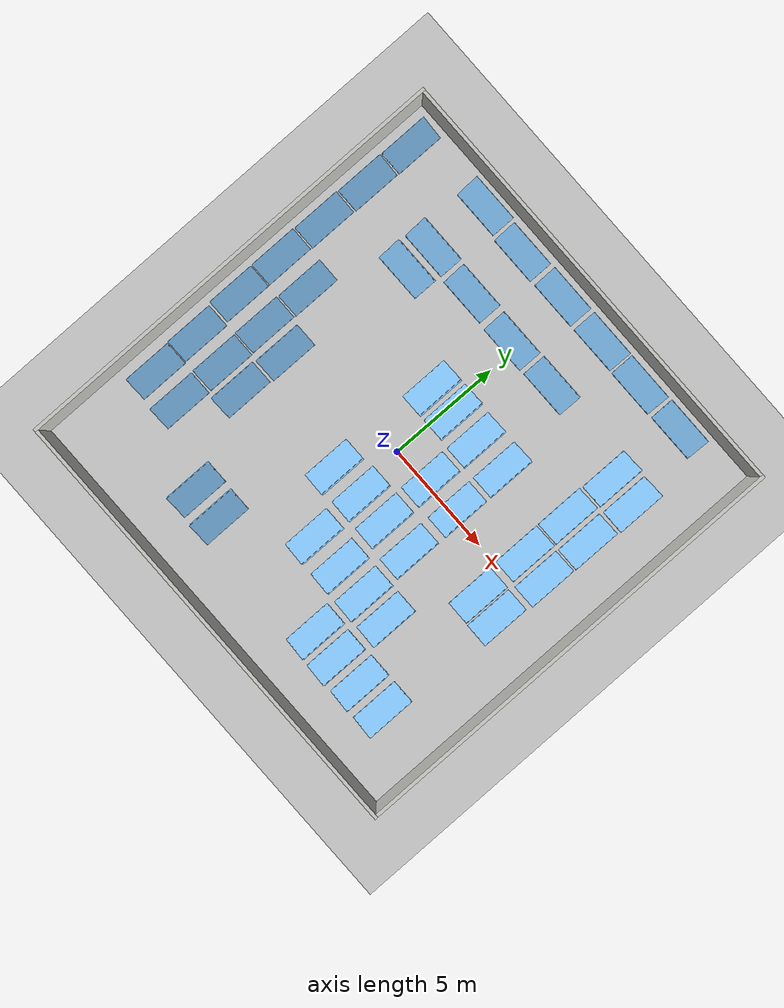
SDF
<sdf version="1.7">
 <world name="default">
  <light name="sun" type="directional">
   <pose>0 0 10 0 -0 0</pose>
   <diffuse>0.8 0.8 0.8 1</diffuse>
   <specular>0.2 0.2 0.2 1</specular>
   <attenuation>
    <range>1000</range>
    <constant>0.9</constant>
    <linear>0.01</linear>
    <quadratic>0.001</quadratic>
   </attenuation>
   <direction>-0.5 0.1 -0.9</direction>
   <spot><inner_angle>0</inner_angle><outer_angle>0</outer_angle><falloff>0</falloff></spot>
  </light>
  <model name="ground_plane">
   <static>1</static>
   <link name="link">
    <collision name="collision">
     <geometry><plane><normal>0 0 1</normal><size>100 100</size></plane></geometry>
     <surface><friction><ode><mu>100</mu><mu2>50</mu2></ode></friction></surface>
    </collision>
    <visual name="visual">
     <cast_shadows>0</cast_shadows>
     <geometry><plane><normal>0 0 1</normal><size>100 100</size></plane></geometry>
     <material>
      <script><uri>file://media/materials/scripts/gazebo.material</uri><name>Gazebo/Grey</name></script>
     </material>
    </visual>
   </link>
  </model>
  <gravity>0 0 -9.8</gravity>
  <magnetic_field>6e-06 2.3e-05 -4.2e-05</magnetic_field>
  <atmosphere type="adiabatic"/>
  <physics type="ode">
   <max_step_size>0.001</max_step_size>
   <real_time_factor>1</real_time_factor>
   <real_time_update_rate>1000</real_time_update_rate>
  </physics>
  <scene><ambient>0.4 0.4 0.4 1</ambient><background>0.7 0.7 0.7 1</background><shadows>1</shadows></scene>
  <spherical_coordinates>
   <surface_model>EARTH_WGS84</surface_model>
   <latitude_deg>0</latitude_deg>
   <longitude_deg>0</longitude_deg>
   <elevation>0</elevation>
   <heading_deg>0</heading_deg>
  </spherical_coordinates>
  <model name="photovoltaic">
   <static>1</static>
   <link name="link">
    <collision name="collision">
     <pose>0 0 0 1.5708 -0 0</pose>
     <geometry><mesh><scale>1 1 1</scale><uri>model://photovoltaic/meshes/photovoltaic.stl</uri></mesh></geometry>
    </collision>
    <visual name="visual">
     <pose>0 0 0 1.5708 -0 0</pose>
     <geometry><mesh><scale>1 1 1</scale><uri>model://photovoltaic/meshes/photovoltaic.stl</uri></mesh></geometry>
     <material>
      <script><uri>file://media/materials/scripts/gazebo.material</uri><name>Gazebo/SkyBlue</name></script>
      <ambient>1 1 1 1</ambient>
     </material>
    </visual>
   </link>
   <pose>1.16697 1.38088 0 0 -0 0</pose>
  </model>
  <model name="photovoltaic_0">
   <static>1</static>
   <link name="link">
    <collision name="collision">
     <pose>0 0 0 1.5708 -0 0</pose>
     <geometry><mesh><scale>1 1 1</scale><uri>model://photovoltaic/meshes/photovoltaic.stl</uri></mesh></geometry>
    </collision>
    <visual name="visual">
     <pose>0 0 0 1.5708 -0 0</pose>
     <geometry><mesh><scale>1 1 1</scale><uri>model://photovoltaic/meshes/photovoltaic.stl</uri></mesh></geometry>
     <material>
      <script><uri>file://media/materials/scripts/gazebo.material</uri><name>Gazebo/SkyBlue</name></script>
      <ambient>1 1 1 1</ambient>
     </material>
    </visual>
   </link>
   <pose>1.19018 -1.10352 0 0 -0 0</pose>
  </model>
  <model name="power_station">
   <pose>0.087649 0.02026 0 0 -0 0</pose>
   <link name="Wall_0">
    <collision name="Wall_0_Collision">
     <geometry><box><size>20.15 0.15 2.5</size></box></geometry>
     <pose>0 0 1.25 0 -0 0</pose>
    </collision>
    <visual name="Wall_0_Visual">
     <pose>0 0 1.25 0 -0 0</pose>
     <geometry><box><size>20.15 0.15 2.5</size></box></geometry>
     <material>
      <script><uri>file://media/materials/scripts/gazebo.material</uri><name>Gazebo/CeilingTiled</name></script>
      <ambient>1 1 1 1</ambient>
     </material>
     <meta><layer>0</layer></meta>
    </visual>
    <pose>-10 0 0 0 -0 -1.5708</pose>
   </link>
   <link name="Wall_1">
    <collision name="Wall_1_Collision">
     <geometry><box><size>20.15 0.15 2.5</size></box></geometry>
     <pose>0 0 1.25 0 -0 0</pose>
    </collision>
    <visual name="Wall_1_Visual">
     <pose>0 0 1.25 0 -0 0</pose>
     <geometry><box><size>20.15 0.15 2.5</size></box></geometry>
     <material>
      <script><uri>file://media/materials/scripts/gazebo.material</uri><name>Gazebo/CeilingTiled</name></script>
      <ambient>1 1 1 1</ambient>
     </material>
     <meta><layer>0</layer></meta>
    </visual>
    <pose>0 -10 0 0 -0 0</pose>
   </link>
   <link name="Wall_2">
    <collision name="Wall_2_Collision">
     <geometry><box><size>20.15 0.15 2.5</size></box></geometry>
     <pose>0 0 1.25 0 -0 0</pose>
    </collision>
    <visual name="Wall_2_Visual">
     <pose>0 0 1.25 0 -0 0</pose>
     <geometry><box><size>20.15 0.15 2.5</size></box></geometry>
     <material>
      <script><uri>file://media/materials/scripts/gazebo.material</uri><name>Gazebo/CeilingTiled</name></script>
      <ambient>1 1 1 1</ambient>
     </material>
     <meta><layer>0</layer></meta>
    </visual>
    <pose>10 0 0 0 -0 1.5708</pose>
   </link>
   <link name="Wall_3">
    <collision name="Wall_3_Collision">
     <geometry><box><size>20.15 0.15 2.5</size></box></geometry>
     <pose>0 0 1.25 0 -0 0</pose>
    </collision>
    <visual name="Wall_3_Visual">
     <pose>0 0 1.25 0 -0 0</pose>
     <geometry><box><size>20.15 0.15 2.5</size></box></geometry>
     <material>
      <script><uri>file://media/materials/scripts/gazebo.material</uri><name>Gazebo/CeilingTiled</name></script>
      <ambient>1 1 1 1</ambient>
     </material>
     <meta><layer>0</layer></meta>
    </visual>
    <pose>0 10 0 0 -0 3.14159</pose>
   </link>
   <static>1</static>
  </model>
  <model name="photovoltaic_1">
   <static>1</static>
   <link name="link">
    <collision name="collision">
     <pose>0 0 0 1.5708 -0 0</pose>
     <geometry><mesh><scale>1 1 1</scale><uri>model://photovoltaic/meshes/photovoltaic.stl</uri></mesh></geometry>
    </collision>
    <visual name="visual">
     <pose>0 0 0 1.5708 -0 0</pose>
     <geometry><mesh><scale>1 1 1</scale><uri>model://photovoltaic/meshes/photovoltaic.stl</uri></mesh></geometry>
     <material>
      <script><uri>file://media/materials/scripts/gazebo.material</uri><name>Gazebo/SkyBlue</name></script>
      <ambient>1 1 1 1</ambient>
     </material>
    </visual>
   </link>
   <pose>1.19039 3.80326 0 0 -0 0</pose>
  </model>
  <model name="photovoltaic_2">
   <static>1</static>
   <link name="link">
    <collision name="collision">
     <pose>0 0 0 1.5708 -0 0</pose>
     <geometry><mesh><scale>1 1 1</scale><uri>model://photovoltaic/meshes/photovoltaic.stl</uri></mesh></geometry>
    </collision>
    <visual name="visual">
     <pose>0 0 0 1.5708 -0 0</pose>
     <geometry><mesh><scale>1 1 1</scale><uri>model://photovoltaic/meshes/photovoltaic.stl</uri></mesh></geometry>
     <material>
      <script><uri>file://media/materials/scripts/gazebo.material</uri><name>Gazebo/SkyBlue</name></script>
      <ambient>1 1 1 1</ambient>
     </material>
    </visual>
   </link>
   <pose>-8.35079 7.43879 0 0 -0 3.1415</pose>
  </model>
  <model name="photovoltaic_3">
   <static>1</static>
   <link name="link">
    <collision name="collision">
     <pose>0 0 0 1.5708 -0 0</pose>
     <geometry><mesh><scale>1 1 1</scale><uri>model://photovoltaic/meshes/photovoltaic.stl</uri></mesh></geometry>
    </collision>
    <visual name="visual">
     <pose>0 0 0 1.5708 -0 0</pose>
     <geometry><mesh><scale>1 1 1</scale><uri>model://photovoltaic/meshes/photovoltaic.stl</uri></mesh></geometry>
     <material>
      <script><uri>file://media/materials/scripts/gazebo.material</uri><name>Gazebo/SkyBlue</name></script>
      <ambient>1 1 1 1</ambient>
     </material>
    </visual>
   </link>
   <pose>-3.82408 8.54561 0 0 -0 1.57</pose>
  </model>
  <model name="photovoltaic_4">
   <static>1</static>
   <link name="link">
    <collision name="collision">
     <pose>0 0 0 1.5708 -0 0</pose>
     <geometry><mesh><scale>1 1 1</scale><uri>model://photovoltaic/meshes/photovoltaic.stl</uri></mesh></geometry>
    </collision>
    <visual name="visual">
     <pose>0 0 0 1.5708 -0 0</pose>
     <geometry><mesh><scale>1 1 1</scale><uri>model://photovoltaic/meshes/photovoltaic.stl</uri></mesh></geometry>
     <material>
      <script><uri>file://media/materials/scripts/gazebo.material</uri><name>Gazebo/SkyBlue</name></script>
      <ambient>1 1 1 1</ambient>
     </material>
    </visual>
   </link>
   <pose>5.9643 6.88636 0 0 -0 0</pose>
  </model>
  <model name="photovoltaic_5">
   <static>1</static>
   <link name="link">
    <collision name="collision">
     <pose>0 0 0 1.5708 -0 0</pose>
     <geometry><mesh><scale>1 1 1</scale><uri>model://photovoltaic/meshes/photovoltaic.stl</uri></mesh></geometry>
    </collision>
    <visual name="visual">
     <pose>0 0 0 1.5708 -0 0</pose>
     <geometry><mesh><scale>1 1 1</scale><uri>model://photovoltaic/meshes/photovoltaic.stl</uri></mesh></geometry>
     <material>
      <script><uri>file://media/materials/scripts/gazebo.material</uri><name>Gazebo/SkyBlue</name></script>
      <ambient>1 1 1 1</ambient>
     </material>
    </visual>
   </link>
   <pose>5.91761 4.552 0 0 -0 0</pose>
  </model>
  <model name="photovoltaic_6">
   <static>1</static>
   <link name="link">
    <collision name="collision">
     <pose>0 0 0 1.5708 -0 0</pose>
     <geometry><mesh><scale>1 1 1</scale><uri>model://photovoltaic/meshes/photovoltaic.stl</uri></mesh></geometry>
    </collision>
    <visual name="visual">
     <pose>0 0 0 1.5708 -0 0</pose>
     <geometry><mesh><scale>1 1 1</scale><uri>model://photovoltaic/meshes/photovoltaic.stl</uri></mesh></geometry>
     <material>
      <script><uri>file://media/materials/scripts/gazebo.material</uri><name>Gazebo/SkyBlue</name></script>
      <ambient>1 1 1 1</ambient>
     </material>
    </visual>
   </link>
   <pose>5.91697 2.26433 0 0 -0 0</pose>
  </model>
  <model name="photovoltaic_7">
   <static>1</static>
   <link name="link">
    <collision name="collision">
     <pose>0 0 0 1.5708 -0 0</pose>
     <geometry><mesh><scale>1 1 1</scale><uri>model://photovoltaic/meshes/photovoltaic.stl</uri></mesh></geometry>
    </collision>
    <visual name="visual">
     <pose>0 0 0 1.5708 -0 0</pose>
     <geometry><mesh><scale>1 1 1</scale><uri>model://photovoltaic/meshes/photovoltaic.stl</uri></mesh></geometry>
     <material>
      <script><uri>file://media/materials/scripts/gazebo.material</uri><name>Gazebo/SkyBlue</name></script>
      <ambient>1 1 1 1</ambient>
     </material>
    </visual>
   </link>
   <pose>5.92966 -0.246844 0 0 -0 0</pose>
  </model>
  <model name="photovoltaic_8">
   <static>1</static>
   <link name="link">
    <collision name="collision">
     <pose>0 0 0 1.5708 -0 0</pose>
     <geometry><mesh><scale>1 1 1</scale><uri>model://photovoltaic/meshes/photovoltaic.stl</uri></mesh></geometry>
    </collision>
    <visual name="visual">
     <pose>0 0 0 1.5708 -0 0</pose>
     <geometry><mesh><scale>1 1 1</scale><uri>model://photovoltaic/meshes/photovoltaic.stl</uri></mesh></geometry>
     <material>
      <script><uri>file://media/materials/scripts/gazebo.material</uri><name>Gazebo/SkyBlue</name></script>
      <ambient>1 1 1 1</ambient>
     </material>
    </visual>
   </link>
   <pose>6.84766 -6.16705 0 0 -0 0</pose>
  </model>
  <model name="photovoltaic_9">
   <static>1</static>
   <link name="link">
    <collision name="collision">
     <pose>0 0 0 1.5708 -0 0</pose>
     <geometry><mesh><scale>1 1 1</scale><uri>model://photovoltaic/meshes/photovoltaic.stl</uri></mesh></geometry>
    </collision>
    <visual name="visual">
     <pose>0 0 0 1.5708 -0 0</pose>
     <geometry><mesh><scale>1 1 1</scale><uri>model://photovoltaic/meshes/photovoltaic.stl</uri></mesh></geometry>
     <material>
      <script><uri>file://media/materials/scripts/gazebo.material</uri><name>Gazebo/SkyBlue</name></script>
      <ambient>1 1 1 1</ambient>
     </material>
    </visual>
   </link>
   <pose>2.78397 3.8169 0 0 -0 0</pose>
  </model>
  <model name="photovoltaic_10">
   <static>1</static>
   <link name="link">
    <collision name="collision">
     <pose>0 0 0 1.5708 -0 0</pose>
     <geometry><mesh><scale>1 1 1</scale><uri>model://photovoltaic/meshes/photovoltaic.stl</uri></mesh></geometry>
    </collision>
    <visual name="visual">
     <pose>0 0 0 1.5708 -0 0</pose>
     <geometry><mesh><scale>1 1 1</scale><uri>model://photovoltaic/meshes/photovoltaic.stl</uri></mesh></geometry>
     <material>
      <script><uri>file://media/materials/scripts/gazebo.material</uri><name>Gazebo/SkyBlue</name></script>
      <ambient>1 1 1 1</ambient>
     </material>
    </visual>
   </link>
   <pose>2.7829 1.3928 0 0 -0 0</pose>
  </model>
  <model name="photovoltaic_11">
   <static>1</static>
   <link name="link">
    <collision name="collision">
     <pose>0 0 0 1.5708 -0 0</pose>
     <geometry><mesh><scale>1 1 1</scale><uri>model://photovoltaic/meshes/photovoltaic.stl</uri></mesh></geometry>
    </collision>
    <visual name="visual">
     <pose>0 0 0 1.5708 -0 0</pose>
     <geometry><mesh><scale>1 1 1</scale><uri>model://photovoltaic/meshes/photovoltaic.stl</uri></mesh></geometry>
     <material>
      <script><uri>file://media/materials/scripts/gazebo.material</uri><name>Gazebo/SkyBlue</name></script>
      <ambient>1 1 1 1</ambient>
     </material>
    </visual>
   </link>
   <pose>2.76878 -1.16618 0 0 -0 0</pose>
  </model>
  <model name="photovoltaic_12">
   <static>1</static>
   <link name="link">
    <collision name="collision">
     <pose>0 0 0 1.5708 -0 0</pose>
     <geometry><mesh><scale>1 1 1</scale><uri>model://photovoltaic/meshes/photovoltaic.stl</uri></mesh></geometry>
    </collision>
    <visual name="visual">
     <pose>0 0 0 1.5708 -0 0</pose>
     <geometry><mesh><scale>1 1 1</scale><uri>model://photovoltaic/meshes/photovoltaic.stl</uri></mesh></geometry>
     <material>
      <script><uri>file://media/materials/scripts/gazebo.material</uri><name>Gazebo/SkyBlue</name></script>
      <ambient>1 1 1 1</ambient>
     </material>
    </visual>
   </link>
   <pose>5.43762 -6.15888 0 0 -0 0</pose>
  </model>
  <model name="photovoltaic_13">
   <static>1</static>
   <link name="link">
    <collision name="collision">
     <pose>0 0 0 1.5708 -0 0</pose>
     <geometry><mesh><scale>1 1 1</scale><uri>model://photovoltaic/meshes/photovoltaic.stl</uri></mesh></geometry>
    </collision>
    <visual name="visual">
     <pose>0 0 0 1.5708 -0 0</pose>
     <geometry><mesh><scale>1 1 1</scale><uri>model://photovoltaic/meshes/photovoltaic.stl</uri></mesh></geometry>
     <material>
      <script><uri>file://media/materials/scripts/gazebo.material</uri><name>Gazebo/SkyBlue</name></script>
      <ambient>1 1 1 1</ambient>
     </material>
    </visual>
   </link>
   <pose>4.20778 -3.6696 0 0 -0 0</pose>
  </model>
  <model name="photovoltaic_14">
   <static>1</static>
   <link name="link">
    <collision name="collision">
     <pose>0 0 0 1.5708 -0 0</pose>
     <geometry><mesh><scale>1 1 1</scale><uri>model://photovoltaic/meshes/photovoltaic.stl</uri></mesh></geometry>
    </collision>
    <visual name="visual">
     <pose>0 0 0 1.5708 -0 0</pose>
     <geometry><mesh><scale>1 1 1</scale><uri>model://photovoltaic/meshes/photovoltaic.stl</uri></mesh></geometry>
     <material>
      <script><uri>file://media/materials/scripts/gazebo.material</uri><name>Gazebo/SkyBlue</name></script>
      <ambient>1 1 1 1</ambient>
     </material>
    </visual>
   </link>
   <pose>4.03882 -6.18969 0 0 -0 0</pose>
  </model>
  <model name="photovoltaic_15">
   <static>1</static>
   <link name="link">
    <collision name="collision">
     <pose>0 0 0 1.5708 -0 0</pose>
     <geometry><mesh><scale>1 1 1</scale><uri>model://photovoltaic/meshes/photovoltaic.stl</uri></mesh></geometry>
    </collision>
    <visual name="visual">
     <pose>0 0 0 1.5708 -0 0</pose>
     <geometry><mesh><scale>1 1 1</scale><uri>model://photovoltaic/meshes/photovoltaic.stl</uri></mesh></geometry>
     <material>
      <script><uri>file://media/materials/scripts/gazebo.material</uri><name>Gazebo/SkyBlue</name></script>
      <ambient>1 1 1 1</ambient>
     </material>
    </visual>
   </link>
   <pose>2.70371 -6.12747 0 0 -0 0</pose>
  </model>
  <model name="photovoltaic_16">
   <static>1</static>
   <link name="link">
    <collision name="collision">
     <pose>0 0 0 1.5708 -0 0</pose>
     <geometry><mesh><scale>1 1 1</scale><uri>model://photovoltaic/meshes/photovoltaic.stl</uri></mesh></geometry>
    </collision>
    <visual name="visual">
     <pose>0 0 0 1.5708 -0 0</pose>
     <geometry><mesh><scale>1 1 1</scale><uri>model://photovoltaic/meshes/photovoltaic.stl</uri></mesh></geometry>
     <material>
      <script><uri>file://media/materials/scripts/gazebo.material</uri><name>Gazebo/SkyBlue</name></script>
      <ambient>1 1 1 1</ambient>
     </material>
    </visual>
   </link>
   <pose>7.28176 6.8318 0 0 -0 0</pose>
  </model>
  <model name="photovoltaic_17">
   <static>1</static>
   <link name="link">
    <collision name="collision">
     <pose>0 0 0 1.5708 -0 0</pose>
     <geometry><mesh><scale>1 1 1</scale><uri>model://photovoltaic/meshes/photovoltaic.stl</uri></mesh></geometry>
    </collision>
    <visual name="visual">
     <pose>0 0 0 1.5708 -0 0</pose>
     <geometry><mesh><scale>1 1 1</scale><uri>model://photovoltaic/meshes/photovoltaic.stl</uri></mesh></geometry>
     <material>
      <script><uri>file://media/materials/scripts/gazebo.material</uri><name>Gazebo/SkyBlue</name></script>
      <ambient>1 1 1 1</ambient>
     </material>
    </visual>
   </link>
   <pose>7.22057 4.4746 0 0 -0 0</pose>
  </model>
  <model name="photovoltaic_18">
   <static>1</static>
   <link name="link">
    <collision name="collision">
     <pose>0 0 0 1.5708 -0 0</pose>
     <geometry><mesh><scale>1 1 1</scale><uri>model://photovoltaic/meshes/photovoltaic.stl</uri></mesh></geometry>
    </collision>
    <visual name="visual">
     <pose>0 0 0 1.5708 -0 0</pose>
     <geometry><mesh><scale>1 1 1</scale><uri>model://photovoltaic/meshes/photovoltaic.stl</uri></mesh></geometry>
     <material>
      <script><uri>file://media/materials/scripts/gazebo.material</uri><name>Gazebo/SkyBlue</name></script>
      <ambient>1 1 1 1</ambient>
     </material>
    </visual>
   </link>
   <pose>7.19482 2.17453 0 0 -0 0</pose>
  </model>
  <model name="photovoltaic_19">
   <static>1</static>
   <link name="link">
    <collision name="collision">
     <pose>0 0 0 1.5708 -0 0</pose>
     <geometry><mesh><scale>1 1 1</scale><uri>model://photovoltaic/meshes/photovoltaic.stl</uri></mesh></geometry>
    </collision>
    <visual name="visual">
     <pose>0 0 0 1.5708 -0 0</pose>
     <geometry><mesh><scale>1 1 1</scale><uri>model://photovoltaic/meshes/photovoltaic.stl</uri></mesh></geometry>
     <material>
      <script><uri>file://media/materials/scripts/gazebo.material</uri><name>Gazebo/SkyBlue</name></script>
      <ambient>1 1 1 1</ambient>
     </material>
    </visual>
   </link>
   <pose>7.1017 -0.277135 0 0 -0 0</pose>
  </model>
  <model name="photovoltaic_20">
   <static>1</static>
   <link name="link">
    <collision name="collision">
     <pose>0 0 0 1.5708 -0 0</pose>
     <geometry><mesh><scale>1 1 1</scale><uri>model://photovoltaic/meshes/photovoltaic.stl</uri></mesh></geometry>
    </collision>
    <visual name="visual">
     <pose>0 0 0 1.5708 -0 0</pose>
     <geometry><mesh><scale>1 1 1</scale><uri>model://photovoltaic/meshes/photovoltaic.stl</uri></mesh></geometry>
     <material>
      <script><uri>file://media/materials/scripts/gazebo.material</uri><name>Gazebo/SkyBlue</name></script>
      <ambient>1 1 1 1</ambient>
     </material>
    </visual>
   </link>
   <pose>-1.54936 3.84101 0 0 -0 0</pose>
  </model>
  <model name="photovoltaic_21">
   <static>1</static>
   <link name="link">
    <collision name="collision">
     <pose>0 0 0 1.5708 -0 0</pose>
     <geometry><mesh><scale>1 1 1</scale><uri>model://photovoltaic/meshes/photovoltaic.stl</uri></mesh></geometry>
    </collision>
    <visual name="visual">
     <pose>0 0 0 1.5708 -0 0</pose>
     <geometry><mesh><scale>1 1 1</scale><uri>model://photovoltaic/meshes/photovoltaic.stl</uri></mesh></geometry>
     <material>
      <script><uri>file://media/materials/scripts/gazebo.material</uri><name>Gazebo/SkyBlue</name></script>
      <ambient>1 1 1 1</ambient>
     </material>
    </visual>
   </link>
   <pose>-0.193508 -3.63546 0 0 -0 0</pose>
  </model>
  <model name="photovoltaic_22">
   <static>1</static>
   <link name="link">
    <collision name="collision">
     <pose>0 0 0 1.5708 -0 0</pose>
     <geometry><mesh><scale>1 1 1</scale><uri>model://photovoltaic/meshes/photovoltaic.stl</uri></mesh></geometry>
    </collision>
    <visual name="visual">
     <pose>0 0 0 1.5708 -0 0</pose>
     <geometry><mesh><scale>1 1 1</scale><uri>model://photovoltaic/meshes/photovoltaic.stl</uri></mesh></geometry>
     <material>
      <script><uri>file://media/materials/scripts/gazebo.material</uri><name>Gazebo/SkyBlue</name></script>
      <ambient>1 1 1 1</ambient>
     </material>
    </visual>
   </link>
   <pose>2.84969 -3.66826 0 0 -0 0</pose>
  </model>
  <model name="photovoltaic_23">
   <static>1</static>
   <link name="link">
    <collision name="collision">
     <pose>0 0 0 1.5708 -0 0</pose>
     <geometry><mesh><scale>1 1 1</scale><uri>model://photovoltaic/meshes/photovoltaic.stl</uri></mesh></geometry>
    </collision>
    <visual name="visual">
     <pose>0 0 0 1.5708 -0 0</pose>
     <geometry><mesh><scale>1 1 1</scale><uri>model://photovoltaic/meshes/photovoltaic.stl</uri></mesh></geometry>
     <material>
      <script><uri>file://media/materials/scripts/gazebo.material</uri><name>Gazebo/SkyBlue</name></script>
      <ambient>1 1 1 1</ambient>
     </material>
    </visual>
   </link>
   <pose>1.38474 -3.65002 0 0 -0 0</pose>
  </model>
  <model name="photovoltaic_24">
   <static>1</static>
   <link name="link">
    <collision name="collision">
     <pose>0 0 0 1.5708 -0 0</pose>
     <geometry><mesh><scale>1 1 1</scale><uri>model://photovoltaic/meshes/photovoltaic.stl</uri></mesh></geometry>
    </collision>
    <visual name="visual">
     <pose>0 0 0 1.5708 -0 0</pose>
     <geometry><mesh><scale>1 1 1</scale><uri>model://photovoltaic/meshes/photovoltaic.stl</uri></mesh></geometry>
     <material>
      <script><uri>file://media/materials/scripts/gazebo.material</uri><name>Gazebo/SkyBlue</name></script>
      <ambient>1 1 1 1</ambient>
     </material>
    </visual>
   </link>
   <pose>3.30133 8.57307 0 0 -0 1.57</pose>
  </model>
  <model name="photovoltaic_2_clone">
   <static>1</static>
   <link name="link">
    <collision name="collision">
     <pose>0 0 0 1.5708 -0 0</pose>
     <geometry><mesh><scale>1 1 1</scale><uri>model://photovoltaic/meshes/photovoltaic.stl</uri></mesh></geometry>
    </collision>
    <visual name="visual">
     <pose>0 0 0 1.5708 -0 0</pose>
     <geometry><mesh><scale>1 1 1</scale><uri>model://photovoltaic/meshes/photovoltaic.stl</uri></mesh></geometry>
     <material>
      <script><uri>file://media/materials/scripts/gazebo.material</uri><name>Gazebo/SkyBlue</name></script>
      <ambient>1 1 1 1</ambient>
     </material>
    </visual>
   </link>
   <pose>-8.37429 5.14212 0 0 -0 3.1415</pose>
  </model>
  <model name="photovoltaic_2_clone_0">
   <static>1</static>
   <link name="link">
    <collision name="collision">
     <pose>0 0 0 1.5708 -0 0</pose>
     <geometry><mesh><scale>1 1 1</scale><uri>model://photovoltaic/meshes/photovoltaic.stl</uri></mesh></geometry>
    </collision>
    <visual name="visual">
     <pose>0 0 0 1.5708 -0 0</pose>
     <geometry><mesh><scale>1 1 1</scale><uri>model://photovoltaic/meshes/photovoltaic.stl</uri></mesh></geometry>
     <material>
      <script><uri>file://media/materials/scripts/gazebo.material</uri><name>Gazebo/SkyBlue</name></script>
      <ambient>1 1 1 1</ambient>
     </material>
    </visual>
   </link>
   <pose>-8.41008 2.84895 0 0 -0 3.1415</pose>
  </model>
  <model name="photovoltaic_2_clone_1">
   <static>1</static>
   <link name="link">
    <collision name="collision">
     <pose>0 0 0 1.5708 -0 0</pose>
     <geometry><mesh><scale>1 1 1</scale><uri>model://photovoltaic/meshes/photovoltaic.stl</uri></mesh></geometry>
    </collision>
    <visual name="visual">
     <pose>0 0 0 1.5708 -0 0</pose>
     <geometry><mesh><scale>1 1 1</scale><uri>model://photovoltaic/meshes/photovoltaic.stl</uri></mesh></geometry>
     <material>
      <script><uri>file://media/materials/scripts/gazebo.material</uri><name>Gazebo/SkyBlue</name></script>
      <ambient>1 1 1 1</ambient>
     </material>
    </visual>
   </link>
   <pose>-8.43817 0.564004 0 0 -0 3.1415</pose>
  </model>
  <model name="photovoltaic_2_clone_2">
   <static>1</static>
   <link name="link">
    <collision name="collision">
     <pose>0 0 0 1.5708 -0 0</pose>
     <geometry><mesh><scale>1 1 1</scale><uri>model://photovoltaic/meshes/photovoltaic.stl</uri></mesh></geometry>
    </collision>
    <visual name="visual">
     <pose>0 0 0 1.5708 -0 0</pose>
     <geometry><mesh><scale>1 1 1</scale><uri>model://photovoltaic/meshes/photovoltaic.stl</uri></mesh></geometry>
     <material>
      <script><uri>file://media/materials/scripts/gazebo.material</uri><name>Gazebo/SkyBlue</name></script>
      <ambient>1 1 1 1</ambient>
     </material>
    </visual>
   </link>
   <pose>-8.43204 -1.68408 0 0 -0 3.1415</pose>
  </model>
  <model name="photovoltaic_2_clone_3">
   <static>1</static>
   <link name="link">
    <collision name="collision">
     <pose>0 0 0 1.5708 -0 0</pose>
     <geometry><mesh><scale>1 1 1</scale><uri>model://photovoltaic/meshes/photovoltaic.stl</uri></mesh></geometry>
    </collision>
    <visual name="visual">
     <pose>0 0 0 1.5708 -0 0</pose>
     <geometry><mesh><scale>1 1 1</scale><uri>model://photovoltaic/meshes/photovoltaic.stl</uri></mesh></geometry>
     <material>
      <script><uri>file://media/materials/scripts/gazebo.material</uri><name>Gazebo/SkyBlue</name></script>
      <ambient>1 1 1 1</ambient>
     </material>
    </visual>
   </link>
   <pose>-8.3419 -3.99858 0 0 -0 3.1415</pose>
  </model>
  <model name="photovoltaic_2_clone_4">
   <static>1</static>
   <link name="link">
    <collision name="collision">
     <pose>0 0 0 1.5708 -0 0</pose>
     <geometry><mesh><scale>1 1 1</scale><uri>model://photovoltaic/meshes/photovoltaic.stl</uri></mesh></geometry>
    </collision>
    <visual name="visual">
     <pose>0 0 0 1.5708 -0 0</pose>
     <geometry><mesh><scale>1 1 1</scale><uri>model://photovoltaic/meshes/photovoltaic.stl</uri></mesh></geometry>
     <material>
      <script><uri>file://media/materials/scripts/gazebo.material</uri><name>Gazebo/SkyBlue</name></script>
      <ambient>1 1 1 1</ambient>
     </material>
    </visual>
   </link>
   <pose>-8.30415 -6.25037 0 0 -0 3.1415</pose>
  </model>
  <model name="photovoltaic_2_clone_5">
   <static>1</static>
   <link name="link">
    <collision name="collision">
     <pose>0 0 0 1.5708 -0 0</pose>
     <geometry><mesh><scale>1 1 1</scale><uri>model://photovoltaic/meshes/photovoltaic.stl</uri></mesh></geometry>
    </collision>
    <visual name="visual">
     <pose>0 0 0 1.5708 -0 0</pose>
     <geometry><mesh><scale>1 1 1</scale><uri>model://photovoltaic/meshes/photovoltaic.stl</uri></mesh></geometry>
     <material>
      <script><uri>file://media/materials/scripts/gazebo.material</uri><name>Gazebo/SkyBlue</name></script>
      <ambient>1 1 1 1</ambient>
     </material>
    </visual>
   </link>
   <pose>-6.77823 -6.31415 0 0 -0 3.1415</pose>
  </model>
  <model name="photovoltaic_2_clone_6">
   <static>1</static>
   <link name="link">
    <collision name="collision">
     <pose>0 0 0 1.5708 -0 0</pose>
     <geometry><mesh><scale>1 1 1</scale><uri>model://photovoltaic/meshes/photovoltaic.stl</uri></mesh></geometry>
    </collision>
    <visual name="visual">
     <pose>0 0 0 1.5708 -0 0</pose>
     <geometry><mesh><scale>1 1 1</scale><uri>model://photovoltaic/meshes/photovoltaic.stl</uri></mesh></geometry>
     <material>
      <script><uri>file://media/materials/scripts/gazebo.material</uri><name>Gazebo/SkyBlue</name></script>
      <ambient>1 1 1 1</ambient>
     </material>
    </visual>
   </link>
   <pose>-6.79434 -4.01095 0 0 -0 3.1415</pose>
  </model>
  <model name="photovoltaic_2_clone_7">
   <static>1</static>
   <link name="link">
    <collision name="collision">
     <pose>0 0 0 1.5708 -0 0</pose>
     <geometry><mesh><scale>1 1 1</scale><uri>model://photovoltaic/meshes/photovoltaic.stl</uri></mesh></geometry>
    </collision>
    <visual name="visual">
     <pose>0 0 0 1.5708 -0 0</pose>
     <geometry><mesh><scale>1 1 1</scale><uri>model://photovoltaic/meshes/photovoltaic.stl</uri></mesh></geometry>
     <material>
      <script><uri>file://media/materials/scripts/gazebo.material</uri><name>Gazebo/SkyBlue</name></script>
      <ambient>1 1 1 1</ambient>
     </material>
    </visual>
   </link>
   <pose>-6.81692 -1.7351 0 0 -0 3.1415</pose>
  </model>
  <model name="photovoltaic_2_clone_8">
   <static>1</static>
   <link name="link">
    <collision name="collision">
     <pose>0 0 0 1.5708 -0 0</pose>
     <geometry><mesh><scale>1 1 1</scale><uri>model://photovoltaic/meshes/photovoltaic.stl</uri></mesh></geometry>
    </collision>
    <visual name="visual">
     <pose>0 0 0 1.5708 -0 0</pose>
     <geometry><mesh><scale>1 1 1</scale><uri>model://photovoltaic/meshes/photovoltaic.stl</uri></mesh></geometry>
     <material>
      <script><uri>file://media/materials/scripts/gazebo.material</uri><name>Gazebo/SkyBlue</name></script>
      <ambient>1 1 1 1</ambient>
     </material>
    </visual>
   </link>
   <pose>-6.78932 0.54494 0 0 -0 3.1415</pose>
  </model>
  <model name="photovoltaic_3_clone">
   <static>1</static>
   <link name="link">
    <collision name="collision">
     <pose>0 0 0 1.5708 -0 0</pose>
     <geometry><mesh><scale>1 1 1</scale><uri>model://photovoltaic/meshes/photovoltaic.stl</uri></mesh></geometry>
    </collision>
    <visual name="visual">
     <pose>0 0 0 1.5708 -0 0</pose>
     <geometry><mesh><scale>1 1 1</scale><uri>model://photovoltaic/meshes/photovoltaic.stl</uri></mesh></geometry>
     <material>
      <script><uri>file://media/materials/scripts/gazebo.material</uri><name>Gazebo/SkyBlue</name></script>
      <ambient>1 1 1 1</ambient>
     </material>
    </visual>
   </link>
   <pose>5.69959 8.60436 0 0 -0 1.57</pose>
  </model>
  <model name="photovoltaic_3_clone_0">
   <static>1</static>
   <link name="link">
    <collision name="collision">
     <pose>0 0 0 1.5708 -0 0</pose>
     <geometry><mesh><scale>1 1 1</scale><uri>model://photovoltaic/meshes/photovoltaic.stl</uri></mesh></geometry>
    </collision>
    <visual name="visual">
     <pose>0 0 0 1.5708 -0 0</pose>
     <geometry><mesh><scale>1 1 1</scale><uri>model://photovoltaic/meshes/photovoltaic.stl</uri></mesh></geometry>
     <material>
      <script><uri>file://media/materials/scripts/gazebo.material</uri><name>Gazebo/SkyBlue</name></script>
      <ambient>1 1 1 1</ambient>
     </material>
    </visual>
   </link>
   <pose>0.991497 8.58507 0 0 -0 1.57</pose>
  </model>
  <model name="photovoltaic_3_clone_1">
   <static>1</static>
   <link name="link">
    <collision name="collision">
     <pose>0 0 0 1.5708 -0 0</pose>
     <geometry><mesh><scale>1 1 1</scale><uri>model://photovoltaic/meshes/photovoltaic.stl</uri></mesh></geometry>
    </collision>
    <visual name="visual">
     <pose>0 0 0 1.5708 -0 0</pose>
     <geometry><mesh><scale>1 1 1</scale><uri>model://photovoltaic/meshes/photovoltaic.stl</uri></mesh></geometry>
     <material>
      <script><uri>file://media/materials/scripts/gazebo.material</uri><name>Gazebo/SkyBlue</name></script>
      <ambient>1 1 1 1</ambient>
     </material>
    </visual>
   </link>
   <pose>-1.40315 8.57681 0 0 -0 1.57</pose>
  </model>
  <model name="photovoltaic_3_clone_2">
   <static>1</static>
   <link name="link">
    <collision name="collision">
     <pose>0 0 0 1.5708 -0 0</pose>
     <geometry><mesh><scale>1 1 1</scale><uri>model://photovoltaic/meshes/photovoltaic.stl</uri></mesh></geometry>
    </collision>
    <visual name="visual">
     <pose>0 0 0 1.5708 -0 0</pose>
     <geometry><mesh><scale>1 1 1</scale><uri>model://photovoltaic/meshes/photovoltaic.stl</uri></mesh></geometry>
     <material>
      <script><uri>file://media/materials/scripts/gazebo.material</uri><name>Gazebo/SkyBlue</name></script>
      <ambient>1 1 1 1</ambient>
     </material>
    </visual>
   </link>
   <pose>0.987158 5.89912 0 0 -0 1.57</pose>
  </model>
  <model name="photovoltaic_3_clone_3">
   <static>1</static>
   <link name="link">
    <collision name="collision">
     <pose>0 0 0 1.5708 -0 0</pose>
     <geometry><mesh><scale>1 1 1</scale><uri>model://photovoltaic/meshes/photovoltaic.stl</uri></mesh></geometry>
    </collision>
    <visual name="visual">
     <pose>0 0 0 1.5708 -0 0</pose>
     <geometry><mesh><scale>1 1 1</scale><uri>model://photovoltaic/meshes/photovoltaic.stl</uri></mesh></geometry>
     <material>
      <script><uri>file://media/materials/scripts/gazebo.material</uri><name>Gazebo/SkyBlue</name></script>
      <ambient>1 1 1 1</ambient>
     </material>
    </visual>
   </link>
   <pose>-6.19644 8.63865 0 0 -0 1.57</pose>
  </model>
  <model name="photovoltaic_3_clone_4">
   <static>1</static>
   <link name="link">
    <collision name="collision">
     <pose>0 0 0 1.5708 -0 0</pose>
     <geometry><mesh><scale>1 1 1</scale><uri>model://photovoltaic/meshes/photovoltaic.stl</uri></mesh></geometry>
    </collision>
    <visual name="visual">
     <pose>0 0 0 1.5708 -0 0</pose>
     <geometry><mesh><scale>1 1 1</scale><uri>model://photovoltaic/meshes/photovoltaic.stl</uri></mesh></geometry>
     <material>
      <script><uri>file://media/materials/scripts/gazebo.material</uri><name>Gazebo/SkyBlue</name></script>
      <ambient>1 1 1 1</ambient>
     </material>
    </visual>
   </link>
   <pose>-3.90741 5.91174 0 0 -0 1.57</pose>
  </model>
  <model name="photovoltaic_3_clone_5">
   <static>1</static>
   <link name="link">
    <collision name="collision">
     <pose>0 0 0 1.5708 -0 0</pose>
     <geometry><mesh><scale>1 1 1</scale><uri>model://photovoltaic/meshes/photovoltaic.stl</uri></mesh></geometry>
    </collision>
    <visual name="visual">
     <pose>0 0 0 1.5708 -0 0</pose>
     <geometry><mesh><scale>1 1 1</scale><uri>model://photovoltaic/meshes/photovoltaic.stl</uri></mesh></geometry>
     <material>
      <script><uri>file://media/materials/scripts/gazebo.material</uri><name>Gazebo/SkyBlue</name></script>
      <ambient>1 1 1 1</ambient>
     </material>
    </visual>
   </link>
   <pose>-1.4109 5.8681 0 0 -0 1.57</pose>
  </model>
  <model name="photovoltaic_3_clone_6">
   <static>1</static>
   <link name="link">
    <collision name="collision">
     <pose>0 0 0 1.5708 -0 0</pose>
     <geometry><mesh><scale>1 1 1</scale><uri>model://photovoltaic/meshes/photovoltaic.stl</uri></mesh></geometry>
    </collision>
    <visual name="visual">
     <pose>0 0 0 1.5708 -0 0</pose>
     <geometry><mesh><scale>1 1 1</scale><uri>model://photovoltaic/meshes/photovoltaic.stl</uri></mesh></geometry>
     <material>
      <script><uri>file://media/materials/scripts/gazebo.material</uri><name>Gazebo/SkyBlue</name></script>
      <ambient>1 1 1 1</ambient>
     </material>
    </visual>
   </link>
   <pose>-6.3671 4.61018 0 0 -0 1.57</pose>
  </model>
  <model name="photovoltaic_3_clone_7">
   <static>1</static>
   <link name="link">
    <collision name="collision">
     <pose>0 0 0 1.5708 -0 0</pose>
     <geometry><mesh><scale>1 1 1</scale><uri>model://photovoltaic/meshes/photovoltaic.stl</uri></mesh></geometry>
    </collision>
    <visual name="visual">
     <pose>0 0 0 1.5708 -0 0</pose>
     <geometry><mesh><scale>1 1 1</scale><uri>model://photovoltaic/meshes/photovoltaic.stl</uri></mesh></geometry>
     <material>
      <script><uri>file://media/materials/scripts/gazebo.material</uri><name>Gazebo/SkyBlue</name></script>
      <ambient>1 1 1 1</ambient>
     </material>
    </visual>
   </link>
   <pose>-6.33514 5.97461 0 0 -0 1.57</pose>
  </model>
  <model name="photovoltaic_17_clone">
   <static>1</static>
   <link name="link">
    <collision name="collision">
     <pose>0 0 0 1.5708 -0 0</pose>
     <geometry><mesh><scale>1 1 1</scale><uri>model://photovoltaic/meshes/photovoltaic.stl</uri></mesh></geometry>
    </collision>
    <visual name="visual">
     <pose>0 0 0 1.5708 -0 0</pose>
     <geometry><mesh><scale>1 1 1</scale><uri>model://photovoltaic/meshes/photovoltaic.stl</uri></mesh></geometry>
     <material>
      <script><uri>file://media/materials/scripts/gazebo.material</uri><name>Gazebo/SkyBlue</name></script>
      <ambient>1 1 1 1</ambient>
     </material>
    </visual>
   </link>
   <pose>-0.241585 -1.09614 0 0 -0 0</pose>
  </model>
  <model name="photovoltaic_17_clone_0">
   <static>1</static>
   <link name="link">
    <collision name="collision">
     <pose>0 0 0 1.5708 -0 0</pose>
     <geometry><mesh><scale>1 1 1</scale><uri>model://photovoltaic/meshes/photovoltaic.stl</uri></mesh></geometry>
    </collision>
    <visual name="visual">
     <pose>0 0 0 1.5708 -0 0</pose>
     <geometry><mesh><scale>1 1 1</scale><uri>model://photovoltaic/meshes/photovoltaic.stl</uri></mesh></geometry>
     <material>
      <script><uri>file://media/materials/scripts/gazebo.material</uri><name>Gazebo/SkyBlue</name></script>
      <ambient>1 1 1 1</ambient>
     </material>
    </visual>
   </link>
   <pose>-0.268298 3.85383 0 0 -0 0</pose>
  </model>
  <model name="photovoltaic_17_clone_1">
   <static>1</static>
   <link name="link">
    <collision name="collision">
     <pose>0 0 0 1.5708 -0 0</pose>
     <geometry><mesh><scale>1 1 1</scale><uri>model://photovoltaic/meshes/photovoltaic.stl</uri></mesh></geometry>
    </collision>
    <visual name="visual">
     <pose>0 0 0 1.5708 -0 0</pose>
     <geometry><mesh><scale>1 1 1</scale><uri>model://photovoltaic/meshes/photovoltaic.stl</uri></mesh></geometry>
     <material>
      <script><uri>file://media/materials/scripts/gazebo.material</uri><name>Gazebo/SkyBlue</name></script>
      <ambient>1 1 1 1</ambient>
     </material>
    </visual>
   </link>
   <pose>-1.76518 -1.19676 0 0 -0 0</pose>
  </model>
  <model name="photovoltaic_2_clone_1_clone">
   <static>1</static>
   <link name="link">
    <collision name="collision">
     <pose>0 0 0 1.5708 -0 0</pose>
     <geometry><mesh><scale>1 1 1</scale><uri>model://photovoltaic/meshes/photovoltaic.stl</uri></mesh></geometry>
    </collision>
    <visual name="visual">
     <pose>0 0 0 1.5708 -0 0</pose>
     <geometry><mesh><scale>1 1 1</scale><uri>model://photovoltaic/meshes/photovoltaic.stl</uri></mesh></geometry>
     <material>
      <script><uri>file://media/materials/scripts/gazebo.material</uri><name>Gazebo/SkyBlue</name></script>
      <ambient>1 1 1 1</ambient>
     </material>
    </visual>
   </link>
   <pose>-5.42558 -1.84827 0 0 -0 3.1415</pose>
  </model>
  <model name="photovoltaic_2_clone_1_clone_0">
   <static>1</static>
   <link name="link">
    <collision name="collision">
     <pose>0 0 0 1.5708 -0 0</pose>
     <geometry><mesh><scale>1 1 1</scale><uri>model://photovoltaic/meshes/photovoltaic.stl</uri></mesh></geometry>
    </collision>
    <visual name="visual">
     <pose>0 0 0 1.5708 -0 0</pose>
     <geometry><mesh><scale>1 1 1</scale><uri>model://photovoltaic/meshes/photovoltaic.stl</uri></mesh></geometry>
     <material>
      <script><uri>file://media/materials/scripts/gazebo.material</uri><name>Gazebo/SkyBlue</name></script>
      <ambient>1 1 1 1</ambient>
     </material>
    </visual>
   </link>
   <pose>-5.48589 -4.18039 0 0 -0 3.1415</pose>
  </model>
  <model name="photovoltaic_2_clone_1_clone_1">
   <static>1</static>
   <link name="link">
    <collision name="collision">
     <pose>0 0 0 1.5708 -0 0</pose>
     <geometry><mesh><scale>1 1 1</scale><uri>model://photovoltaic/meshes/photovoltaic.stl</uri></mesh></geometry>
    </collision>
    <visual name="visual">
     <pose>0 0 0 1.5708 -0 0</pose>
     <geometry><mesh><scale>1 1 1</scale><uri>model://photovoltaic/meshes/photovoltaic.stl</uri></mesh></geometry>
     <material>
      <script><uri>file://media/materials/scripts/gazebo.material</uri><name>Gazebo/SkyBlue</name></script>
      <ambient>1 1 1 1</ambient>
     </material>
    </visual>
   </link>
   <pose>-2.22864 -8.20188 0 0 -0 3.1415</pose>
  </model>
  <model name="photovoltaic_2_clone_1_clone_2">
   <static>1</static>
   <link name="link">
    <collision name="collision">
     <pose>0 0 0 1.5708 -0 0</pose>
     <geometry><mesh><scale>1 1 1</scale><uri>model://photovoltaic/meshes/photovoltaic.stl</uri></mesh></geometry>
    </collision>
    <visual name="visual">
     <pose>0 0 0 1.5708 -0 0</pose>
     <geometry><mesh><scale>1 1 1</scale><uri>model://photovoltaic/meshes/photovoltaic.stl</uri></mesh></geometry>
     <material>
      <script><uri>file://media/materials/scripts/gazebo.material</uri><name>Gazebo/SkyBlue</name></script>
      <ambient>1 1 1 1</ambient>
     </material>
    </visual>
   </link>
   <pose>-3.65716 -8.16575 0 0 -0 3.1415</pose>
  </model>
 </world>
</sdf>
